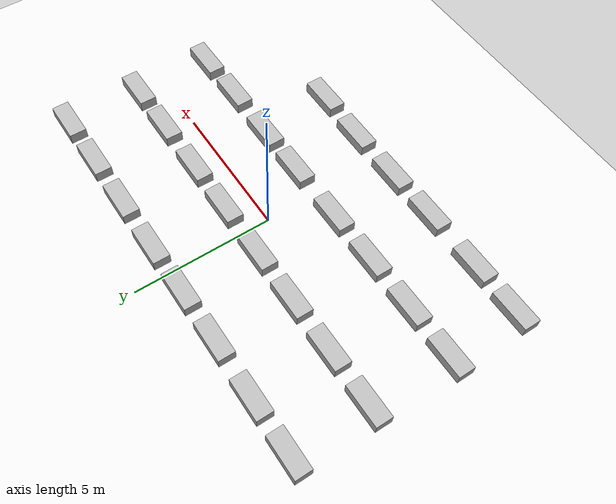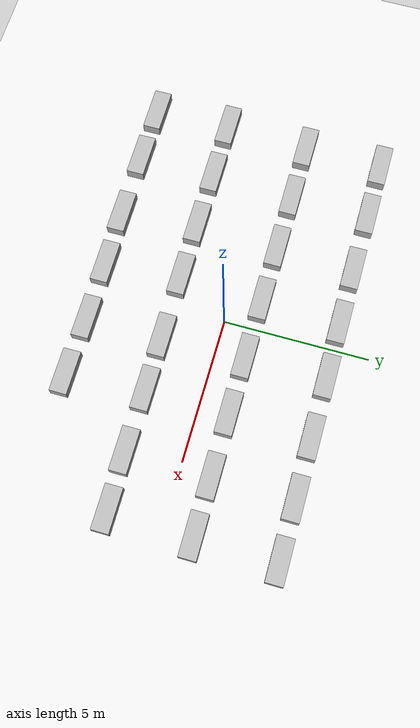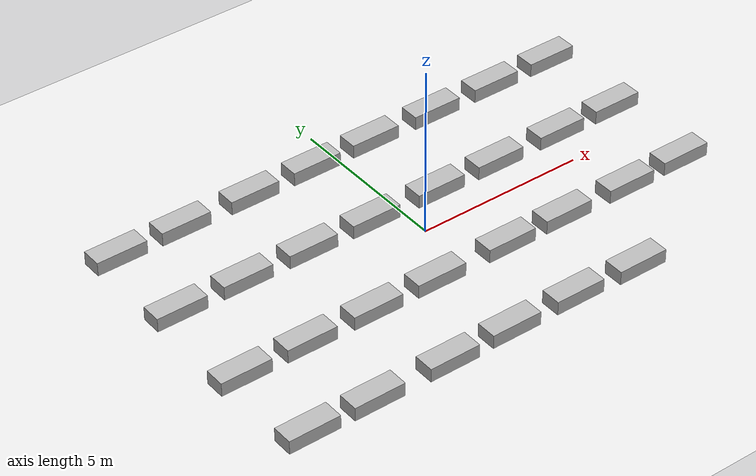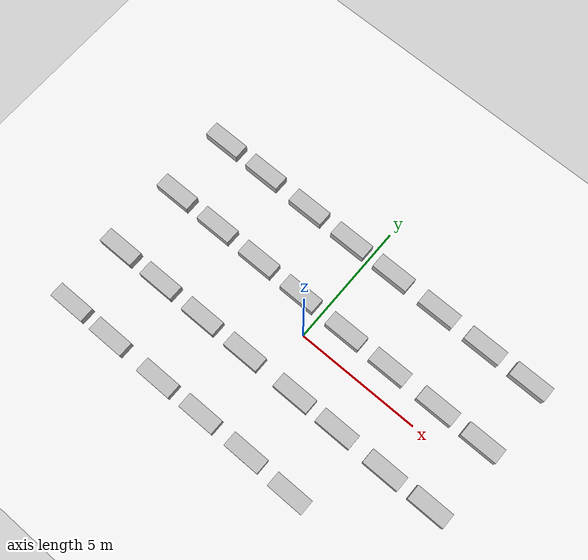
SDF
<sdf version="1.7">
 <world name="mywarehouse">
  <light name="sun" type="directional">
   <pose>6 10 10 0 -0 0</pose>
   <diffuse>0.8 0.8 0.8 1</diffuse>
   <specular>0.2 0.2 0.2 1</specular>
   <attenuation>
    <range>1000</range>
    <constant>0.9</constant>
    <linear>0.01</linear>
    <quadratic>0.001</quadratic>
   </attenuation>
   <direction>-0.5 0.1 -0.9</direction>
   <spot><inner_angle>0</inner_angle><outer_angle>0</outer_angle><falloff>0</falloff></spot>
  </light>
  <model name="ground_plane">
   <static>1</static>
   <link name="link">
    <collision name="collision">
     <geometry><plane><normal>0 0 1</normal><size>100 100</size></plane></geometry>
     <surface><friction><ode><mu>100</mu><mu2>50</mu2></ode></friction></surface>
    </collision>
    <visual name="visual">
     <cast_shadows>0</cast_shadows>
     <geometry><plane><normal>0 0 1</normal><size>100 100</size></plane></geometry>
     <material>
      <script><uri>file://media/materials/scripts/gazebo.material</uri><name>Gazebo/White</name></script>
     </material>
    </visual>
   </link>
  </model>
  <gravity>0 0 -9.8</gravity>
  <magnetic_field>6e-06 2.3e-05 -4.2e-05</magnetic_field>
  <atmosphere type="adiabatic"/>
  <physics type="ode">
   <max_step_size>0.001</max_step_size>
   <real_time_factor>1</real_time_factor>
   <real_time_update_rate>1000</real_time_update_rate>
  </physics>
  <scene><ambient>0.4 0.4 0.4 1</ambient><background>0.7 0.7 0.7 1</background><shadows>1</shadows></scene>
  <audio><device>default</device></audio>
  <spherical_coordinates>
   <surface_model>EARTH_WGS84</surface_model>
   <latitude_deg>0</latitude_deg>
   <longitude_deg>0</longitude_deg>
   <elevation>0</elevation>
   <heading_deg>0</heading_deg>
  </spherical_coordinates>
  <light name="skysun" type="directional">
   <pose>-6 -9 10 0 -0 0</pose>
   <diffuse>0.8 0.8 0.8 1</diffuse>
   <specular>0.2 0.2 0.2 1</specular>
   <attenuation>
    <range>1000</range>
    <constant>0.9</constant>
    <linear>0.01</linear>
    <quadratic>0.001</quadratic>
   </attenuation>
   <direction>-0.5 0.1 -0.9</direction>
   <spot><inner_angle>0</inner_angle><outer_angle>0</outer_angle><falloff>0</falloff></spot>
  </light>
  <model name="brick_box_3x1x3">
   <static>1</static>
   <link name="chassis">
    <pose>0 0 0.5 0 -0 0</pose>
    <collision name="collision"><geometry><box><size>1.5 0.6 0.4</size></box></geometry></collision>
    <visual name="visual">
     <geometry>
      <mesh><uri>model://brick_box_3x1x3/meshes/simple_box.dae</uri><scale>1.5 0.6 0.4</scale></mesh>
     </geometry>
     <material>
      <script>
       <uri>model://brick_box_3x1x3/materials/scripts</uri>
       <uri>model://brick_box_3x1x3/materials/textures</uri>
       <name>BrickBox/Diffuse</name>
      </script>
     </material>
    </visual>
   </link>
   <pose>-2.89323 3.76122 -0.175668 0 -0 0</pose>
  </model>
  <model name="brick_box_3x1x3_clone">
   <static>1</static>
   <link name="chassis">
    <pose>0 0 0.5 0 -0 0</pose>
    <collision name="collision"><geometry><box><size>1.5 0.6 0.4</size></box></geometry></collision>
    <visual name="visual">
     <geometry>
      <mesh><uri>model://brick_box_3x1x3/meshes/simple_box.dae</uri><scale>1.5 0.6 0.4</scale></mesh>
     </geometry>
     <material>
      <script>
       <uri>model://brick_box_3x1x3/materials/scripts</uri>
       <uri>model://brick_box_3x1x3/materials/textures</uri>
       <name>BrickBox/Diffuse</name>
      </script>
     </material>
    </visual>
   </link>
   <pose>-0.892535 3.77265 -0.175668 0 -0 0</pose>
  </model>
  <model name="brick_box_3x1x3_clone_0">
   <static>1</static>
   <link name="chassis">
    <pose>0 0 0.5 0 -0 0</pose>
    <collision name="collision"><geometry><box><size>1.5 0.6 0.4</size></box></geometry></collision>
    <visual name="visual">
     <geometry>
      <mesh><uri>model://brick_box_3x1x3/meshes/simple_box.dae</uri><scale>1.5 0.6 0.4</scale></mesh>
     </geometry>
     <material>
      <script>
       <uri>model://brick_box_3x1x3/materials/scripts</uri>
       <uri>model://brick_box_3x1x3/materials/textures</uri>
       <name>BrickBox/Diffuse</name>
      </script>
     </material>
    </visual>
   </link>
   <pose>-5.03175 3.78313 -0.175668 0 -0 0</pose>
  </model>
  <model name="brick_box_3x1x3_clone_1">
   <static>1</static>
   <link name="chassis">
    <pose>0 0 0.5 0 -0 0</pose>
    <collision name="collision"><geometry><box><size>1.5 0.6 0.4</size></box></geometry></collision>
    <visual name="visual">
     <geometry>
      <mesh><uri>model://brick_box_3x1x3/meshes/simple_box.dae</uri><scale>1.5 0.6 0.4</scale></mesh>
     </geometry>
     <material>
      <script>
       <uri>model://brick_box_3x1x3/materials/scripts</uri>
       <uri>model://brick_box_3x1x3/materials/textures</uri>
       <name>BrickBox/Diffuse</name>
      </script>
     </material>
    </visual>
   </link>
   <pose>-6.99151 3.78333 -0.175668 0 -0 0</pose>
  </model>
  <model name="brick_box_3x1x3_clone_2">
   <static>1</static>
   <link name="chassis">
    <pose>0 0 0.5 0 -0 0</pose>
    <collision name="collision"><geometry><box><size>1.5 0.6 0.4</size></box></geometry></collision>
    <visual name="visual">
     <geometry>
      <mesh><uri>model://brick_box_3x1x3/meshes/simple_box.dae</uri><scale>1.5 0.6 0.4</scale></mesh>
     </geometry>
     <material>
      <script>
       <uri>model://brick_box_3x1x3/materials/scripts</uri>
       <uri>model://brick_box_3x1x3/materials/textures</uri>
       <name>BrickBox/Diffuse</name>
      </script>
     </material>
    </visual>
   </link>
   <pose>1.05342 3.7939 -0.175668 0 -0 0</pose>
  </model>
  <model name="brick_box_3x1x3_clone_3">
   <static>1</static>
   <link name="chassis">
    <pose>0 0 0.5 0 -0 0</pose>
    <collision name="collision"><geometry><box><size>1.5 0.6 0.4</size></box></geometry></collision>
    <visual name="visual">
     <geometry>
      <mesh><uri>model://brick_box_3x1x3/meshes/simple_box.dae</uri><scale>1.5 0.6 0.4</scale></mesh>
     </geometry>
     <material>
      <script>
       <uri>model://brick_box_3x1x3/materials/scripts</uri>
       <uri>model://brick_box_3x1x3/materials/textures</uri>
       <name>BrickBox/Diffuse</name>
      </script>
     </material>
    </visual>
   </link>
   <pose>3.13522 3.79456 -0.175668 0 -0 0</pose>
  </model>
  <model name="brick_box_3x1x3_clone_4">
   <static>1</static>
   <link name="chassis">
    <pose>0 0 0.5 0 -0 0</pose>
    <collision name="collision"><geometry><box><size>1.5 0.6 0.4</size></box></geometry></collision>
    <visual name="visual">
     <geometry>
      <mesh><uri>model://brick_box_3x1x3/meshes/simple_box.dae</uri><scale>1.5 0.6 0.4</scale></mesh>
     </geometry>
     <material>
      <script>
       <uri>model://brick_box_3x1x3/materials/scripts</uri>
       <uri>model://brick_box_3x1x3/materials/textures</uri>
       <name>BrickBox/Diffuse</name>
      </script>
     </material>
    </visual>
   </link>
   <pose>5.17523 3.79138 -0.175668 0 -0 0</pose>
  </model>
  <model name="brick_box_3x1x3_clone_5">
   <static>1</static>
   <link name="chassis">
    <pose>0 0 0.5 0 -0 0</pose>
    <collision name="collision"><geometry><box><size>1.5 0.6 0.4</size></box></geometry></collision>
    <visual name="visual">
     <geometry>
      <mesh><uri>model://brick_box_3x1x3/meshes/simple_box.dae</uri><scale>1.5 0.6 0.4</scale></mesh>
     </geometry>
     <material>
      <script>
       <uri>model://brick_box_3x1x3/materials/scripts</uri>
       <uri>model://brick_box_3x1x3/materials/textures</uri>
       <name>BrickBox/Diffuse</name>
      </script>
     </material>
    </visual>
   </link>
   <pose>7.15112 3.79756 -0.175668 0 -0 0</pose>
  </model>
  <model name="brick_box_3x1x3_clone_6">
   <static>1</static>
   <link name="chassis">
    <pose>0 0 0.5 0 -0 0</pose>
    <collision name="collision"><geometry><box><size>1.5 0.6 0.4</size></box></geometry></collision>
    <visual name="visual">
     <geometry>
      <mesh><uri>model://brick_box_3x1x3/meshes/simple_box.dae</uri><scale>1.5 0.6 0.4</scale></mesh>
     </geometry>
     <material>
      <script>
       <uri>model://brick_box_3x1x3/materials/scripts</uri>
       <uri>model://brick_box_3x1x3/materials/textures</uri>
       <name>BrickBox/Diffuse</name>
      </script>
     </material>
    </visual>
   </link>
   <pose>-7.00153 1.05669 -0.175668 0 -0 0</pose>
  </model>
  <model name="brick_box_3x1x3_clone_7">
   <static>1</static>
   <link name="chassis">
    <pose>0 0 0.5 0 -0 0</pose>
    <collision name="collision"><geometry><box><size>1.5 0.6 0.4</size></box></geometry></collision>
    <visual name="visual">
     <geometry>
      <mesh><uri>model://brick_box_3x1x3/meshes/simple_box.dae</uri><scale>1.5 0.6 0.4</scale></mesh>
     </geometry>
     <material>
      <script>
       <uri>model://brick_box_3x1x3/materials/scripts</uri>
       <uri>model://brick_box_3x1x3/materials/textures</uri>
       <name>BrickBox/Diffuse</name>
      </script>
     </material>
    </visual>
   </link>
   <pose>-5.00533 1.06114 -0.175668 0 -0 0</pose>
  </model>
  <model name="brick_box_3x1x3_clone_8">
   <static>1</static>
   <link name="chassis">
    <pose>0 0 0.5 0 -0 0</pose>
    <collision name="collision"><geometry><box><size>1.5 0.6 0.4</size></box></geometry></collision>
    <visual name="visual">
     <geometry>
      <mesh><uri>model://brick_box_3x1x3/meshes/simple_box.dae</uri><scale>1.5 0.6 0.4</scale></mesh>
     </geometry>
     <material>
      <script>
       <uri>model://brick_box_3x1x3/materials/scripts</uri>
       <uri>model://brick_box_3x1x3/materials/textures</uri>
       <name>BrickBox/Diffuse</name>
      </script>
     </material>
    </visual>
   </link>
   <pose>-2.99016 1.05473 -0.175668 0 -0 0</pose>
  </model>
  <model name="brick_box_3x1x3_clone_9">
   <static>1</static>
   <link name="chassis">
    <pose>0 0 0.5 0 -0 0</pose>
    <collision name="collision"><geometry><box><size>1.5 0.6 0.4</size></box></geometry></collision>
    <visual name="visual">
     <geometry>
      <mesh><uri>model://brick_box_3x1x3/meshes/simple_box.dae</uri><scale>1.5 0.6 0.4</scale></mesh>
     </geometry>
     <material>
      <script>
       <uri>model://brick_box_3x1x3/materials/scripts</uri>
       <uri>model://brick_box_3x1x3/materials/textures</uri>
       <name>BrickBox/Diffuse</name>
      </script>
     </material>
    </visual>
   </link>
   <pose>-0.99493 1.04576 -0.175668 0 -0 0</pose>
  </model>
  <model name="brick_box_3x1x3_clone_10">
   <static>1</static>
   <link name="chassis">
    <pose>0 0 0.5 0 -0 0</pose>
    <collision name="collision"><geometry><box><size>1.5 0.6 0.4</size></box></geometry></collision>
    <visual name="visual">
     <geometry>
      <mesh><uri>model://brick_box_3x1x3/meshes/simple_box.dae</uri><scale>1.5 0.6 0.4</scale></mesh>
     </geometry>
     <material>
      <script>
       <uri>model://brick_box_3x1x3/materials/scripts</uri>
       <uri>model://brick_box_3x1x3/materials/textures</uri>
       <name>BrickBox/Diffuse</name>
      </script>
     </material>
    </visual>
   </link>
   <pose>1.11524 1.03201 -0.175668 0 -0 0</pose>
  </model>
  <model name="brick_box_3x1x3_clone_11">
   <static>1</static>
   <link name="chassis">
    <pose>0 0 0.5 0 -0 0</pose>
    <collision name="collision"><geometry><box><size>1.5 0.6 0.4</size></box></geometry></collision>
    <visual name="visual">
     <geometry>
      <mesh><uri>model://brick_box_3x1x3/meshes/simple_box.dae</uri><scale>1.5 0.6 0.4</scale></mesh>
     </geometry>
     <material>
      <script>
       <uri>model://brick_box_3x1x3/materials/scripts</uri>
       <uri>model://brick_box_3x1x3/materials/textures</uri>
       <name>BrickBox/Diffuse</name>
      </script>
     </material>
    </visual>
   </link>
   <pose>3.09741 1.03 -0.175668 0 -0 0</pose>
  </model>
  <model name="brick_box_3x1x3_clone_12">
   <static>1</static>
   <link name="chassis">
    <pose>0 0 0.5 0 -0 0</pose>
    <collision name="collision"><geometry><box><size>1.5 0.6 0.4</size></box></geometry></collision>
    <visual name="visual">
     <geometry>
      <mesh><uri>model://brick_box_3x1x3/meshes/simple_box.dae</uri><scale>1.5 0.6 0.4</scale></mesh>
     </geometry>
     <material>
      <script>
       <uri>model://brick_box_3x1x3/materials/scripts</uri>
       <uri>model://brick_box_3x1x3/materials/textures</uri>
       <name>BrickBox/Diffuse</name>
      </script>
     </material>
    </visual>
   </link>
   <pose>5.21214 1.03721 -0.175668 0 -0 0</pose>
  </model>
  <model name="brick_box_3x1x3_clone_13">
   <static>1</static>
   <link name="chassis">
    <pose>0 0 0.5 0 -0 0</pose>
    <collision name="collision"><geometry><box><size>1.5 0.6 0.4</size></box></geometry></collision>
    <visual name="visual">
     <geometry>
      <mesh><uri>model://brick_box_3x1x3/meshes/simple_box.dae</uri><scale>1.5 0.6 0.4</scale></mesh>
     </geometry>
     <material>
      <script>
       <uri>model://brick_box_3x1x3/materials/scripts</uri>
       <uri>model://brick_box_3x1x3/materials/textures</uri>
       <name>BrickBox/Diffuse</name>
      </script>
     </material>
    </visual>
   </link>
   <pose>7.14036 1.03608 -0.175668 0 -0 0</pose>
  </model>
  <model name="brick_box_3x1x3_clone_14">
   <static>1</static>
   <link name="chassis">
    <pose>0 0 0.5 0 -0 0</pose>
    <collision name="collision"><geometry><box><size>1.5 0.6 0.4</size></box></geometry></collision>
    <visual name="visual">
     <geometry>
      <mesh><uri>model://brick_box_3x1x3/meshes/simple_box.dae</uri><scale>1.5 0.6 0.4</scale></mesh>
     </geometry>
     <material>
      <script>
       <uri>model://brick_box_3x1x3/materials/scripts</uri>
       <uri>model://brick_box_3x1x3/materials/textures</uri>
       <name>BrickBox/Diffuse</name>
      </script>
     </material>
    </visual>
   </link>
   <pose>-7.10984 -1.85448 -0.175668 0 -0 0</pose>
  </model>
  <model name="brick_box_3x1x3_clone_15">
   <static>1</static>
   <link name="chassis">
    <pose>0 0 0.5 0 -0 0</pose>
    <collision name="collision"><geometry><box><size>1.5 0.6 0.4</size></box></geometry></collision>
    <visual name="visual">
     <geometry>
      <mesh><uri>model://brick_box_3x1x3/meshes/simple_box.dae</uri><scale>1.5 0.6 0.4</scale></mesh>
     </geometry>
     <material>
      <script>
       <uri>model://brick_box_3x1x3/materials/scripts</uri>
       <uri>model://brick_box_3x1x3/materials/textures</uri>
       <name>BrickBox/Diffuse</name>
      </script>
     </material>
    </visual>
   </link>
   <pose>-5.14564 -1.84535 -0.175668 0 -0 0</pose>
  </model>
  <model name="brick_box_3x1x3_clone_16">
   <static>1</static>
   <link name="chassis">
    <pose>0 0 0.5 0 -0 0</pose>
    <collision name="collision"><geometry><box><size>1.5 0.6 0.4</size></box></geometry></collision>
    <visual name="visual">
     <geometry>
      <mesh><uri>model://brick_box_3x1x3/meshes/simple_box.dae</uri><scale>1.5 0.6 0.4</scale></mesh>
     </geometry>
     <material>
      <script>
       <uri>model://brick_box_3x1x3/materials/scripts</uri>
       <uri>model://brick_box_3x1x3/materials/textures</uri>
       <name>BrickBox/Diffuse</name>
      </script>
     </material>
    </visual>
   </link>
   <pose>-3.12581 -1.8502 -0.175668 0 -0 0</pose>
  </model>
  <model name="brick_box_3x1x3_clone_17">
   <static>1</static>
   <link name="chassis">
    <pose>0 0 0.5 0 -0 0</pose>
    <collision name="collision"><geometry><box><size>1.5 0.6 0.4</size></box></geometry></collision>
    <visual name="visual">
     <geometry>
      <mesh><uri>model://brick_box_3x1x3/meshes/simple_box.dae</uri><scale>1.5 0.6 0.4</scale></mesh>
     </geometry>
     <material>
      <script>
       <uri>model://brick_box_3x1x3/materials/scripts</uri>
       <uri>model://brick_box_3x1x3/materials/textures</uri>
       <name>BrickBox/Diffuse</name>
      </script>
     </material>
    </visual>
   </link>
   <pose>-1.12433 -1.84199 -0.175668 0 -0 0</pose>
  </model>
  <model name="brick_box_3x1x3_clone_18">
   <static>1</static>
   <link name="chassis">
    <pose>0 0 0.5 0 -0 0</pose>
    <collision name="collision"><geometry><box><size>1.5 0.6 0.4</size></box></geometry></collision>
    <visual name="visual">
     <geometry>
      <mesh><uri>model://brick_box_3x1x3/meshes/simple_box.dae</uri><scale>1.5 0.6 0.4</scale></mesh>
     </geometry>
     <material>
      <script>
       <uri>model://brick_box_3x1x3/materials/scripts</uri>
       <uri>model://brick_box_3x1x3/materials/textures</uri>
       <name>BrickBox/Diffuse</name>
      </script>
     </material>
    </visual>
   </link>
   <pose>1.15916 -1.82843 -0.175668 0 -0 0</pose>
  </model>
  <model name="brick_box_3x1x3_clone_19">
   <static>1</static>
   <link name="chassis">
    <pose>0 0 0.5 0 -0 0</pose>
    <collision name="collision"><geometry><box><size>1.5 0.6 0.4</size></box></geometry></collision>
    <visual name="visual">
     <geometry>
      <mesh><uri>model://brick_box_3x1x3/meshes/simple_box.dae</uri><scale>1.5 0.6 0.4</scale></mesh>
     </geometry>
     <material>
      <script>
       <uri>model://brick_box_3x1x3/materials/scripts</uri>
       <uri>model://brick_box_3x1x3/materials/textures</uri>
       <name>BrickBox/Diffuse</name>
      </script>
     </material>
    </visual>
   </link>
   <pose>3.05128 -1.81633 -0.175668 0 -0 0</pose>
  </model>
  <model name="brick_box_3x1x3_clone_20">
   <static>1</static>
   <link name="chassis">
    <pose>0 0 0.5 0 -0 0</pose>
    <collision name="collision"><geometry><box><size>1.5 0.6 0.4</size></box></geometry></collision>
    <visual name="visual">
     <geometry>
      <mesh><uri>model://brick_box_3x1x3/meshes/simple_box.dae</uri><scale>1.5 0.6 0.4</scale></mesh>
     </geometry>
     <material>
      <script>
       <uri>model://brick_box_3x1x3/materials/scripts</uri>
       <uri>model://brick_box_3x1x3/materials/textures</uri>
       <name>BrickBox/Diffuse</name>
      </script>
     </material>
    </visual>
   </link>
   <pose>5.17364 -1.83789 -0.175668 0 -0 0</pose>
  </model>
  <model name="brick_box_3x1x3_clone_21">
   <static>1</static>
   <link name="chassis">
    <pose>0 0 0.5 0 -0 0</pose>
    <collision name="collision"><geometry><box><size>1.5 0.6 0.4</size></box></geometry></collision>
    <visual name="visual">
     <geometry>
      <mesh><uri>model://brick_box_3x1x3/meshes/simple_box.dae</uri><scale>1.5 0.6 0.4</scale></mesh>
     </geometry>
     <material>
      <script>
       <uri>model://brick_box_3x1x3/materials/scripts</uri>
       <uri>model://brick_box_3x1x3/materials/textures</uri>
       <name>BrickBox/Diffuse</name>
      </script>
     </material>
    </visual>
   </link>
   <pose>7.0832 -1.79884 -0.175668 0 -0 0</pose>
  </model>
  <model name="brick_box_3x1x3_clone_22">
   <static>1</static>
   <link name="chassis">
    <pose>0 0 0.5 0 -0 0</pose>
    <collision name="collision"><geometry><box><size>1.5 0.6 0.4</size></box></geometry></collision>
    <visual name="visual">
     <geometry>
      <mesh><uri>model://brick_box_3x1x3/meshes/simple_box.dae</uri><scale>1.5 0.6 0.4</scale></mesh>
     </geometry>
     <material>
      <script>
       <uri>model://brick_box_3x1x3/materials/scripts</uri>
       <uri>model://brick_box_3x1x3/materials/textures</uri>
       <name>BrickBox/Diffuse</name>
      </script>
     </material>
    </visual>
   </link>
   <pose>3.21898 -4.50681 -0.175668 0 -0 0</pose>
  </model>
  <model name="brick_box_3x1x3_clone_23">
   <static>1</static>
   <link name="chassis">
    <pose>0 0 0.5 0 -0 0</pose>
    <collision name="collision"><geometry><box><size>1.5 0.6 0.4</size></box></geometry></collision>
    <visual name="visual">
     <geometry>
      <mesh><uri>model://brick_box_3x1x3/meshes/simple_box.dae</uri><scale>1.5 0.6 0.4</scale></mesh>
     </geometry>
     <material>
      <script>
       <uri>model://brick_box_3x1x3/materials/scripts</uri>
       <uri>model://brick_box_3x1x3/materials/textures</uri>
       <name>BrickBox/Diffuse</name>
      </script>
     </material>
    </visual>
   </link>
   <pose>1.21542 -4.44499 -0.175668 0 -0 0</pose>
  </model>
  <model name="brick_box_3x1x3_clone_24">
   <static>1</static>
   <link name="chassis">
    <pose>0 0 0.5 0 -0 0</pose>
    <collision name="collision"><geometry><box><size>1.5 0.6 0.4</size></box></geometry></collision>
    <visual name="visual">
     <geometry>
      <mesh><uri>model://brick_box_3x1x3/meshes/simple_box.dae</uri><scale>1.5 0.6 0.4</scale></mesh>
     </geometry>
     <material>
      <script>
       <uri>model://brick_box_3x1x3/materials/scripts</uri>
       <uri>model://brick_box_3x1x3/materials/textures</uri>
       <name>BrickBox/Diffuse</name>
      </script>
     </material>
    </visual>
   </link>
   <pose>-0.848617 -4.46127 -0.175668 0 -0 0</pose>
  </model>
  <model name="brick_box_3x1x3_clone_25">
   <static>1</static>
   <link name="chassis">
    <pose>0 0 0.5 0 -0 0</pose>
    <collision name="collision"><geometry><box><size>1.5 0.6 0.4</size></box></geometry></collision>
    <visual name="visual">
     <geometry>
      <mesh><uri>model://brick_box_3x1x3/meshes/simple_box.dae</uri><scale>1.5 0.6 0.4</scale></mesh>
     </geometry>
     <material>
      <script>
       <uri>model://brick_box_3x1x3/materials/scripts</uri>
       <uri>model://brick_box_3x1x3/materials/textures</uri>
       <name>BrickBox/Diffuse</name>
      </script>
     </material>
    </visual>
   </link>
   <pose>-2.81297 -4.50046 -0.175668 0 -0 0</pose>
  </model>
  <model name="brick_box_3x1x3_clone_26">
   <static>1</static>
   <link name="chassis">
    <pose>0 0 0.5 0 -0 0</pose>
    <collision name="collision"><geometry><box><size>1.5 0.6 0.4</size></box></geometry></collision>
    <visual name="visual">
     <geometry>
      <mesh><uri>model://brick_box_3x1x3/meshes/simple_box.dae</uri><scale>1.5 0.6 0.4</scale></mesh>
     </geometry>
     <material>
      <script>
       <uri>model://brick_box_3x1x3/materials/scripts</uri>
       <uri>model://brick_box_3x1x3/materials/textures</uri>
       <name>BrickBox/Diffuse</name>
      </script>
     </material>
    </visual>
   </link>
   <pose>-5.09604 -4.50231 -0.175668 0 -0 0</pose>
  </model>
  <model name="brick_box_3x1x3_clone_27">
   <static>1</static>
   <link name="chassis">
    <pose>0 0 0.5 0 -0 0</pose>
    <collision name="collision"><geometry><box><size>1.5 0.6 0.4</size></box></geometry></collision>
    <visual name="visual">
     <geometry>
      <mesh><uri>model://brick_box_3x1x3/meshes/simple_box.dae</uri><scale>1.5 0.6 0.4</scale></mesh>
     </geometry>
     <material>
      <script>
       <uri>model://brick_box_3x1x3/materials/scripts</uri>
       <uri>model://brick_box_3x1x3/materials/textures</uri>
       <name>BrickBox/Diffuse</name>
      </script>
     </material>
    </visual>
   </link>
   <pose>-7.0054 -4.48886 -0.175668 0 -0 0</pose>
  </model>
 </world>
</sdf>
